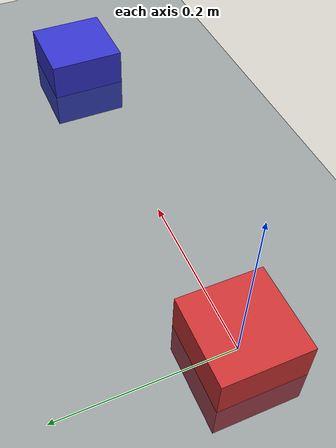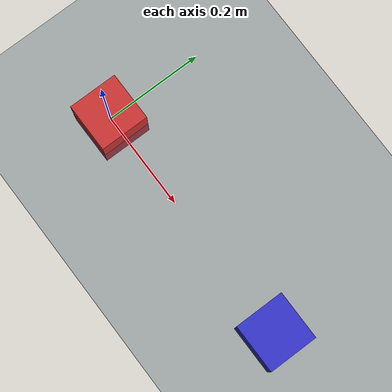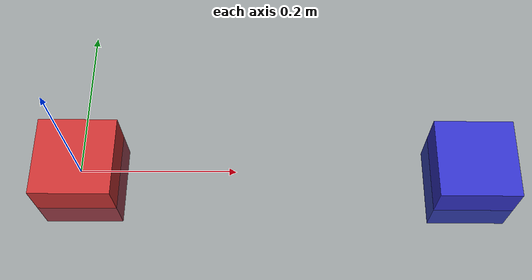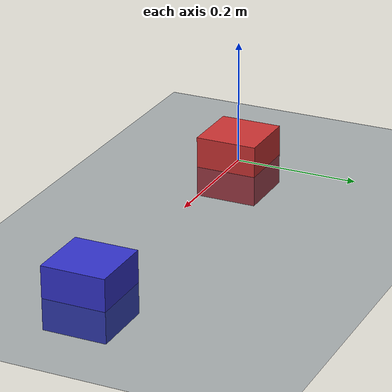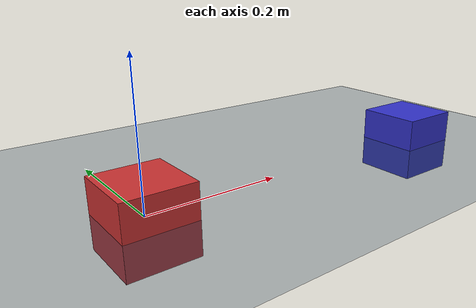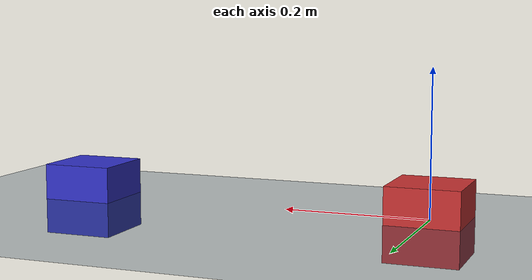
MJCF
<mujoco model="two_1D_blocks">
    <!-- Use degrees for euler angles, local coordinates for bodies -->
    <compiler angle="degree" coordinate="local"/>

    <!-- Simulation options: turn off gravity so blocks stay in the same z-plane -->
    <option timestep="0.002" iterations="1" gravity="0 0 0"/>

    <!-- Default visual properties for geoms and bodies (optional) -->
    <default>
        <!-- Give a small friction, etc. for collisions -->
        <geom friction="0.7 0.1 0.1" density="1000" margin="0.002" condim="3"/>
    </default>

    <!-- Some simple lighting and texturing -->
    <visual>
        <headlight ambient="0.4 0.4 0.4" diffuse="0.8 0.8 0.8" specular="0.1 0.1 0.1"/>
        <map znear="0.01"/>
        <quality shadowsize="2048"/>
    </visual>

    <asset>
        <!-- A simple skybox gradient background -->
        <texture name="skybox" type="skybox" builtin="gradient"
                 rgb1="0.4 0.6 0.8" rgb2="0 0 0" width="800" height="800"
                 mark="random" markrgb="1 1 1"/>
        <!-- A simple checkered plane texture -->
        <texture name="grid" type="2d" builtin="checker"
                 rgb1="0.1 0.2 0.3"  rgb2="0.2 0.3 0.4"
                 width="300" height="300" mark="edge" markrgb="0.2 0.3 0.4"/>
        <material name="grid" texture="grid" texrepeat="1 1" texuniform="true" reflectance="0.2"/>

        <!-- Materials for the blocks -->
        <material name="block1_mat" rgba="0.8 0.2 0.2 1"/>
        <material name="block2_mat" rgba="0.2 0.2 0.8 1"/>
    </asset>

    <worldbody>
        <!-- A floor plane, just for visual reference. It's at z=0. -->
        <geom name="floor" pos="0 0 0" size="4 4 0.1" type="plane" material="grid"/>

        <!-- Block 1: restricted to slide along x-axis only. -->
        <body name="block1" pos="0 0 0.0">
            <!-- A slide joint along x-axis only -->
            <joint name="slide1" type="slide" axis="1 0 0"/>
            <!-- The box representing the block -->
            <geom name="block1_geom" type="box" size="0.05 0.05 0.05" material="block1_mat"/>
        </body>

        <!-- Block 2: also restricted to slide along x-axis only, starts to the right of Block 1. -->
        <body name="block2" pos="0.5 0 0.0">
            <joint name="slide2" type="slide" axis="1 0 0"/>
            <geom name="block2_geom" type="box" size="0.05 0.05 0.05" material="block2_mat"/>
        </body>
    </worldbody>
</mujoco>
